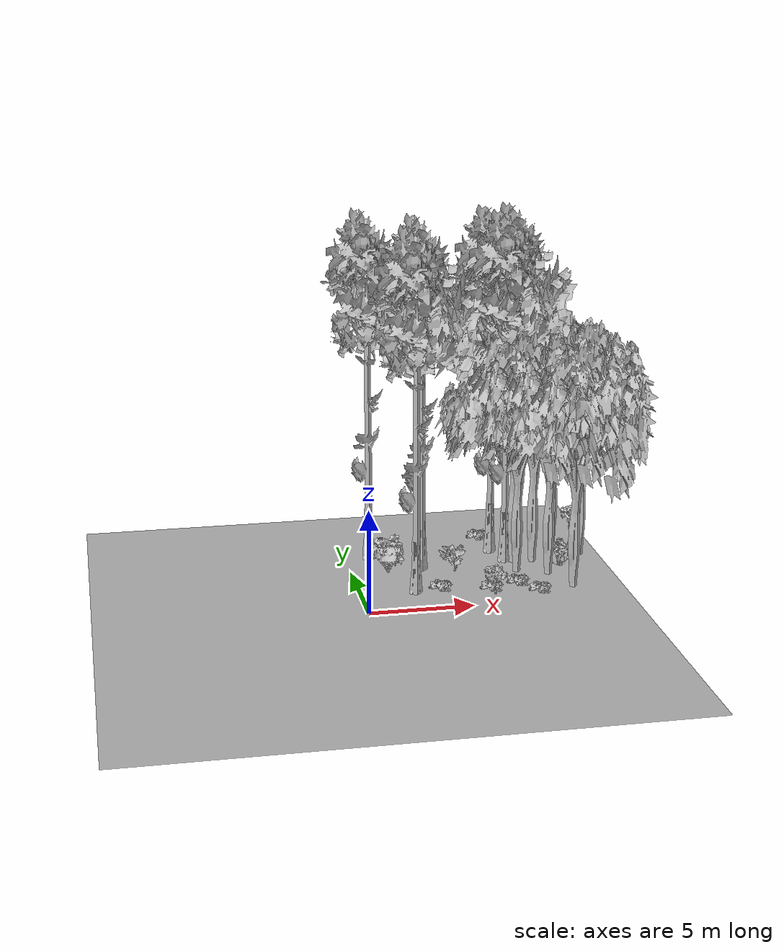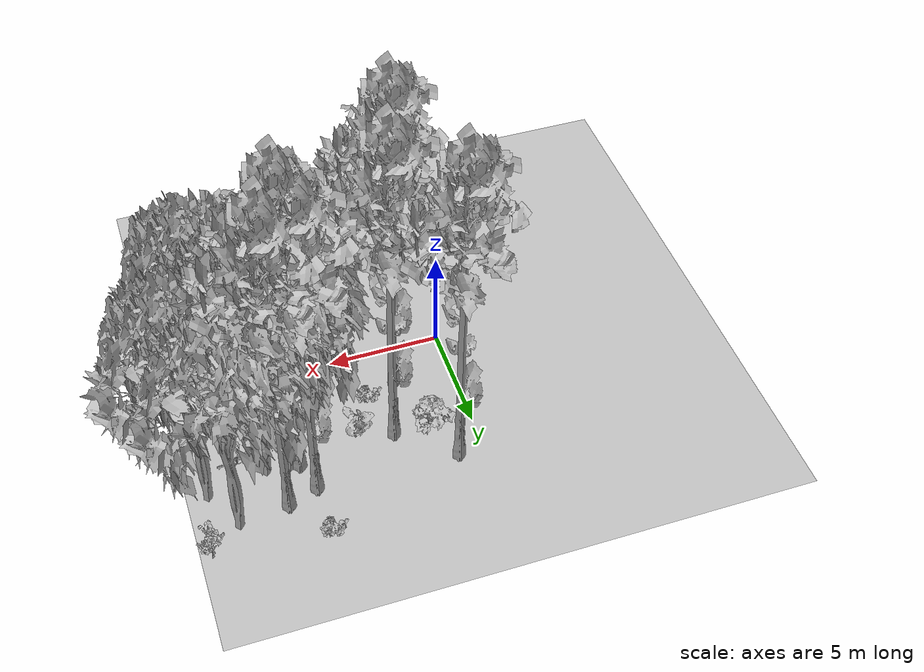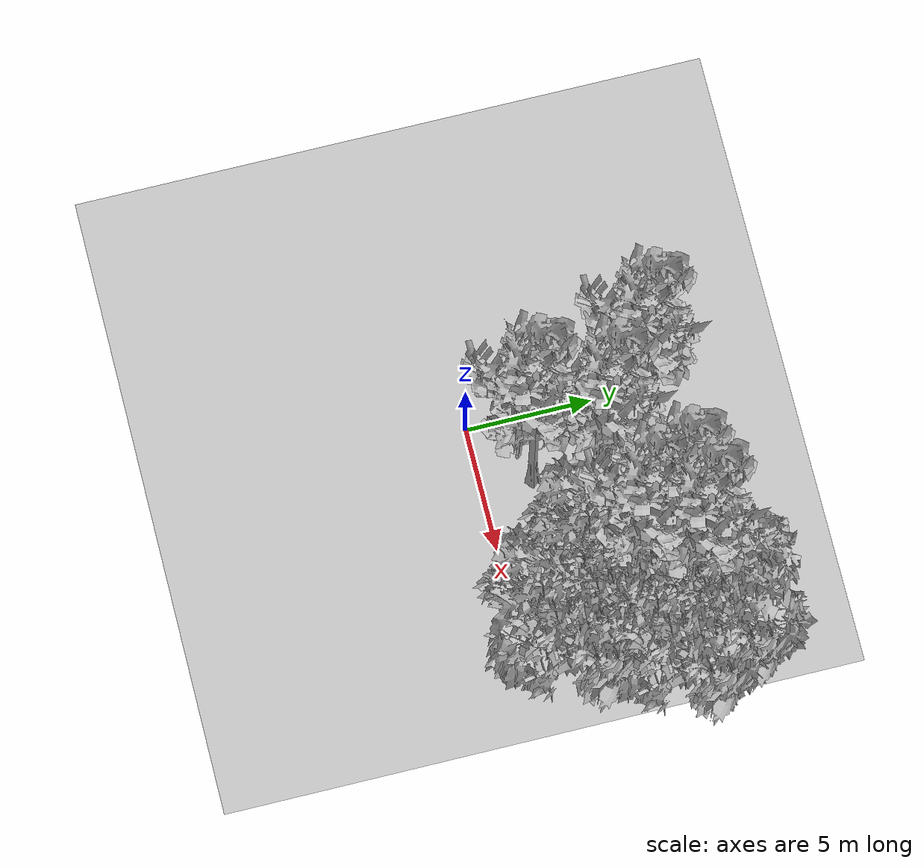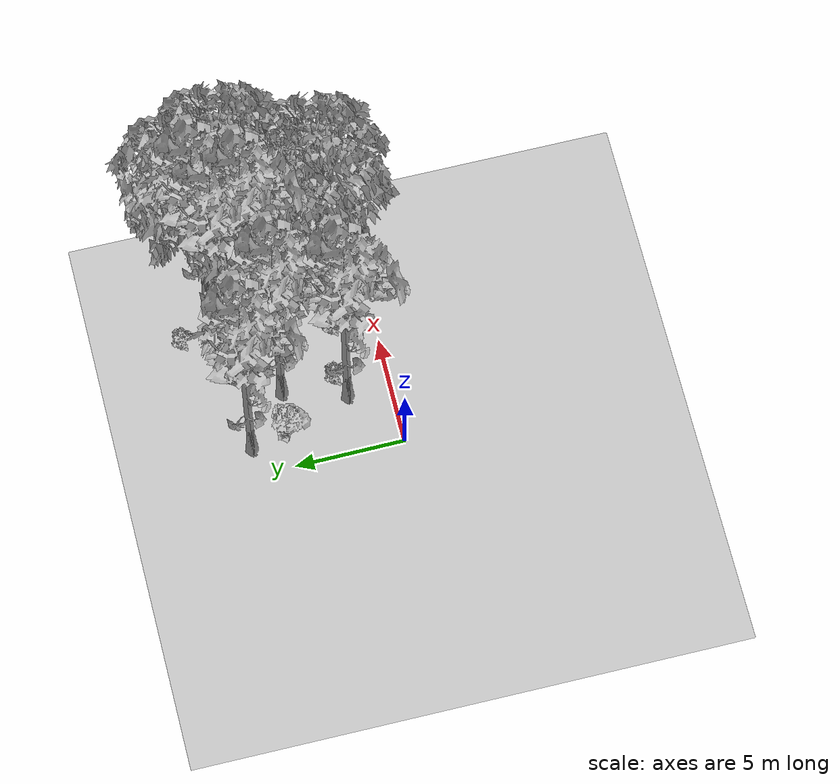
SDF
<sdf version="1.7">
 <world name="default">
  <model name="ground_plane">
   <static>1</static>
   <link name="link">
    <collision name="collision">
     <pose>-50 0 0 0 -0 0</pose>
     <geometry><plane><normal>0 0 1</normal><size>80 80</size></plane></geometry>
     <surface><contact><ode><min_depth>0.01</min_depth><max_vel>0</max_vel></ode></contact></surface>
    </collision>
    <visual name="grass">
     <cast_shadows>0</cast_shadows>
     <geometry>
      <mesh>
       <scale>0.46714285714285714 0.46714285714285714 0.1</scale>
       <uri>file://grass_plane/meshes/grass_plane.dae</uri>
      </mesh>
     </geometry>
    </visual>
   </link>
  </model>
  <model name="Tree 153">
   <static>1</static>
   <pose>3.458715369949438 4.8113871068294 0 1.57079 -0 0</pose>
   <link name="link">
    <collision name="collision">
     <geometry><mesh><scale>3.5 5 3.5</scale><uri>model://tree_9/meshes/tree_9.obj</uri></mesh></geometry>
    </collision>
    <visual name="visual">
     <geometry><mesh><scale>3.5 5 3.5</scale><uri>model://tree_9/meshes/tree_9.obj</uri></mesh></geometry>
    </visual>
   </link>
  </model>
  <model name="Tree 231">
   <static>1</static>
   <pose>8.636192492611812 7.031670209288919 0 1.57079 -0 0</pose>
   <link name="link">
    <collision name="collision">
     <geometry><mesh><scale>3.5 5 3.5</scale><uri>model://tree_9/meshes/tree_9.obj</uri></mesh></geometry>
    </collision>
    <visual name="visual">
     <geometry><mesh><scale>3.5 5 3.5</scale><uri>model://tree_9/meshes/tree_9.obj</uri></mesh></geometry>
    </visual>
   </link>
  </model>
  <model name="Tree 233">
   <static>1</static>
   <pose>10.655892731503158 7.218321532085696 0 1.57079 -0 0</pose>
   <link name="link">
    <collision name="collision">
     <geometry><mesh><scale>3.5 5 3.5</scale><uri>model://tree_2/meshes/tree_2.obj</uri></mesh></geometry>
    </collision>
    <visual name="visual">
     <geometry><mesh><scale>3.5 5 3.5</scale><uri>model://tree_2/meshes/tree_2.obj</uri></mesh></geometry>
    </visual>
   </link>
  </model>
  <model name="Tree 277">
   <static>1</static>
   <pose>1.16729514940765 6.7102457449451265 0 1.57079 -0 0</pose>
   <link name="link">
    <collision name="collision">
     <geometry><mesh><scale>3.5 5 3.5</scale><uri>model://tree_9/meshes/tree_9.obj</uri></mesh></geometry>
    </collision>
    <visual name="visual">
     <geometry><mesh><scale>3.5 5 3.5</scale><uri>model://tree_9/meshes/tree_9.obj</uri></mesh></geometry>
    </visual>
   </link>
  </model>
  <model name="Tree 282">
   <static>1</static>
   <pose>7.912085173183513 3.791865483184928 0 1.57079 -0 0</pose>
   <link name="link">
    <collision name="collision">
     <geometry><mesh><scale>3.5 5 3.5</scale><uri>model://tree_2/meshes/tree_2.obj</uri></mesh></geometry>
    </collision>
    <visual name="visual">
     <geometry><mesh><scale>3.5 5 3.5</scale><uri>model://tree_2/meshes/tree_2.obj</uri></mesh></geometry>
    </visual>
   </link>
  </model>
  <model name="Tree 326">
   <static>1</static>
   <pose>10.09958448422892 1.4994731853863001 0 1.57079 -0 0</pose>
   <link name="link">
    <collision name="collision">
     <geometry><mesh><scale>3.5 5 3.5</scale><uri>model://tree_2/meshes/tree_2.obj</uri></mesh></geometry>
    </collision>
    <visual name="visual">
     <geometry><mesh><scale>3.5 5 3.5</scale><uri>model://tree_2/meshes/tree_2.obj</uri></mesh></geometry>
    </visual>
   </link>
  </model>
  <model name="Tree 345">
   <static>1</static>
   <pose>7.713393444329284 5.186435338040042 0 1.57079 -0 0</pose>
   <link name="link">
    <collision name="collision">
     <geometry><mesh><scale>3.5 5 3.5</scale><uri>model://tree_9/meshes/tree_9.obj</uri></mesh></geometry>
    </collision>
    <visual name="visual">
     <geometry><mesh><scale>3.5 5 3.5</scale><uri>model://tree_9/meshes/tree_9.obj</uri></mesh></geometry>
    </visual>
   </link>
  </model>
  <model name="Tree 365">
   <static>1</static>
   <pose>7.31811874958052 6.545467177849858 0 1.57079 -0 0</pose>
   <link name="link">
    <collision name="collision">
     <geometry><mesh><scale>3.5 5 3.5</scale><uri>model://tree_9/meshes/tree_9.obj</uri></mesh></geometry>
    </collision>
    <visual name="visual">
     <geometry><mesh><scale>3.5 5 3.5</scale><uri>model://tree_9/meshes/tree_9.obj</uri></mesh></geometry>
    </visual>
   </link>
  </model>
  <model name="Tree 389">
   <static>1</static>
   <pose>11.59871960288168 5.453144228922355 0 1.57079 -0 0</pose>
   <link name="link">
    <collision name="collision">
     <geometry><mesh><scale>3.5 5 3.5</scale><uri>model://tree_2/meshes/tree_2.obj</uri></mesh></geometry>
    </collision>
    <visual name="visual">
     <geometry><mesh><scale>3.5 5 3.5</scale><uri>model://tree_2/meshes/tree_2.obj</uri></mesh></geometry>
    </visual>
   </link>
  </model>
  <model name="Tree 396">
   <static>1</static>
   <pose>9.008813413038425 4.933989539232272 0 1.57079 -0 0</pose>
   <link name="link">
    <collision name="collision">
     <geometry><mesh><scale>3.5 5 3.5</scale><uri>model://tree_2/meshes/tree_2.obj</uri></mesh></geometry>
    </collision>
    <visual name="visual">
     <geometry><mesh><scale>3.5 5 3.5</scale><uri>model://tree_2/meshes/tree_2.obj</uri></mesh></geometry>
    </visual>
   </link>
  </model>
  <model name="Tree 420">
   <static>1</static>
   <pose>9.347204470196601 3.238486408159403 0 1.57079 -0 0</pose>
   <link name="link">
    <collision name="collision">
     <geometry><mesh><scale>3.5 5 3.5</scale><uri>model://tree_2/meshes/tree_2.obj</uri></mesh></geometry>
    </collision>
    <visual name="visual">
     <geometry><mesh><scale>3.5 5 3.5</scale><uri>model://tree_2/meshes/tree_2.obj</uri></mesh></geometry>
    </visual>
   </link>
  </model>
  <model name="Tree 513">
   <static>1</static>
   <pose>2.6107005302262536 1.9947391517389264 0 1.57079 -0 0</pose>
   <link name="link">
    <collision name="collision">
     <geometry><mesh><scale>3.5 5 3.5</scale><uri>model://tree_9/meshes/tree_9.obj</uri></mesh></geometry>
    </collision>
    <visual name="visual">
     <geometry><mesh><scale>3.5 5 3.5</scale><uri>model://tree_9/meshes/tree_9.obj</uri></mesh></geometry>
    </visual>
   </link>
  </model>
  <model name="Tree 523">
   <static>1</static>
   <pose>8.0447634813099 5.0360488900553335 0 1.57079 -0 0</pose>
   <link name="link">
    <collision name="collision">
     <geometry><mesh><scale>3.5 5 3.5</scale><uri>model://tree_2/meshes/tree_2.obj</uri></mesh></geometry>
    </collision>
    <visual name="visual">
     <geometry><mesh><scale>3.5 5 3.5</scale><uri>model://tree_2/meshes/tree_2.obj</uri></mesh></geometry>
    </visual>
   </link>
  </model>
  <model name="Bush 3">
   <static>1</static>
   <pose>7.693453339683579 2.319008393014471 0 1.57079 -0 0</pose>
   <link name="link">
    <collision name="collision">
     <geometry><mesh><scale>2 2 2</scale><uri>model://bush_2/meshes/bush_2.obj</uri></mesh></geometry>
     <surface><contact><collide_without_contact>false</collide_without_contact></contact></surface>
    </collision>
    <visual name="visual">
     <geometry><mesh><scale>2 2 2</scale><uri>model://bush_2/meshes/bush_2.obj</uri></mesh></geometry>
    </visual>
   </link>
  </model>
  <model name="Bush 48">
   <static>1</static>
   <pose>3.884564025152791 2.287600205693053 0 1.57079 -0 0</pose>
   <link name="link">
    <collision name="collision">
     <geometry><mesh><scale>2 2 2</scale><uri>model://bush_2/meshes/bush_2.obj</uri></mesh></geometry>
     <surface><contact><collide_without_contact>false</collide_without_contact></contact></surface>
    </collision>
    <visual name="visual">
     <geometry><mesh><scale>2 2 2</scale><uri>model://bush_2/meshes/bush_2.obj</uri></mesh></geometry>
    </visual>
   </link>
  </model>
  <model name="Bush 71">
   <static>1</static>
   <pose>6.278072045894753 1.843040989530408 0 1.57079 -0 0</pose>
   <link name="link">
    <collision name="collision">
     <geometry><mesh><scale>2 2 2</scale><uri>model://bush_2/meshes/bush_2.obj</uri></mesh></geometry>
     <surface><contact><collide_without_contact>false</collide_without_contact></contact></surface>
    </collision>
    <visual name="visual">
     <geometry><mesh><scale>2 2 2</scale><uri>model://bush_2/meshes/bush_2.obj</uri></mesh></geometry>
    </visual>
   </link>
  </model>
  <model name="Bush 137">
   <static>1</static>
   <pose>10.300253805344084 4.146486776339479 0 1.57079 -0 0</pose>
   <link name="link">
    <collision name="collision">
     <geometry><mesh><scale>2 2 2</scale><uri>model://bush_4/meshes/bush_4.obj</uri></mesh></geometry>
     <surface><contact><collide_without_contact>false</collide_without_contact></contact></surface>
    </collision>
    <visual name="visual">
     <geometry><mesh><scale>2 2 2</scale><uri>model://bush_4/meshes/bush_4.obj</uri></mesh></geometry>
    </visual>
   </link>
  </model>
  <model name="Bush 192">
   <static>1</static>
   <pose>12.101575234771971 8.406129940351008 0 1.57079 -0 0</pose>
   <link name="link">
    <collision name="collision">
     <geometry><mesh><scale>2 2 2</scale><uri>model://bush_5/meshes/bush_5.obj</uri></mesh></geometry>
     <surface><contact><collide_without_contact>false</collide_without_contact></contact></surface>
    </collision>
    <visual name="visual">
     <geometry><mesh><scale>2 2 2</scale><uri>model://bush_5/meshes/bush_5.obj</uri></mesh></geometry>
    </visual>
   </link>
  </model>
  <model name="Bush 210">
   <static>1</static>
   <pose>5.031094823169816 4.345348616625344 0 1.57079 -0 0</pose>
   <link name="link">
    <collision name="collision">
     <geometry><mesh><scale>2 2 2</scale><uri>model://bush_0/meshes/bush_0.obj</uri></mesh></geometry>
     <surface><contact><collide_without_contact>false</collide_without_contact></contact></surface>
    </collision>
    <visual name="visual">
     <geometry><mesh><scale>2 2 2</scale><uri>model://bush_0/meshes/bush_0.obj</uri></mesh></geometry>
    </visual>
   </link>
  </model>
  <model name="Bush 266">
   <static>1</static>
   <pose>8.497555120294173 1.2457537366618538 0 1.57079 -0 0</pose>
   <link name="link">
    <collision name="collision">
     <geometry><mesh><scale>2 2 2</scale><uri>model://bush_2/meshes/bush_2.obj</uri></mesh></geometry>
     <surface><contact><collide_without_contact>false</collide_without_contact></contact></surface>
    </collision>
    <visual name="visual">
     <geometry><mesh><scale>2 2 2</scale><uri>model://bush_2/meshes/bush_2.obj</uri></mesh></geometry>
    </visual>
   </link>
  </model>
  <model name="Bush 345">
   <static>1</static>
   <pose>1.7889329425394607 4.730972926466734 0 1.57079 -0 0</pose>
   <link name="link">
    <collision name="collision">
     <geometry><mesh><scale>2 2 2</scale><uri>model://bush_1/meshes/bush_1.obj</uri></mesh></geometry>
     <surface><contact><collide_without_contact>false</collide_without_contact></contact></surface>
    </collision>
    <visual name="visual">
     <geometry><mesh><scale>2 2 2</scale><uri>model://bush_1/meshes/bush_1.obj</uri></mesh></geometry>
    </visual>
   </link>
  </model>
  <model name="Bush 459">
   <static>1</static>
   <pose>6.289654843914242 1.1573222749673988 0 1.57079 -0 0</pose>
   <link name="link">
    <collision name="collision">
     <geometry><mesh><scale>2 2 2</scale><uri>model://bush_5/meshes/bush_5.obj</uri></mesh></geometry>
     <surface><contact><collide_without_contact>false</collide_without_contact></contact></surface>
    </collision>
    <visual name="visual">
     <geometry><mesh><scale>2 2 2</scale><uri>model://bush_5/meshes/bush_5.obj</uri></mesh></geometry>
    </visual>
   </link>
  </model>
  <model name="Bush 519">
   <static>1</static>
   <pose>7.164281246491591 8.553677197840628 0 1.57079 -0 0</pose>
   <link name="link">
    <collision name="collision">
     <geometry><mesh><scale>2 2 2</scale><uri>model://bush_2/meshes/bush_2.obj</uri></mesh></geometry>
     <surface><contact><collide_without_contact>false</collide_without_contact></contact></surface>
    </collision>
    <visual name="visual">
     <geometry><mesh><scale>2 2 2</scale><uri>model://bush_2/meshes/bush_2.obj</uri></mesh></geometry>
    </visual>
   </link>
  </model>
 </world>
</sdf>
